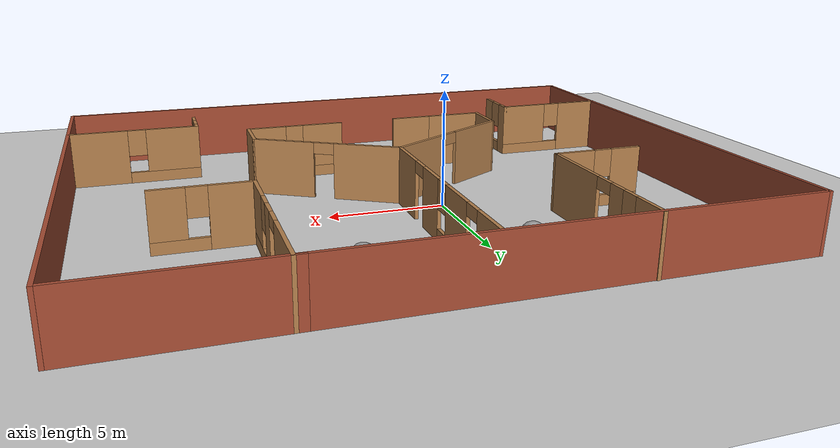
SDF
<sdf version="1.7">
 <world name="default">
  <light name="sun" type="directional">
   <pose>0 0 10 0 -0 0</pose>
   <diffuse>0.8 0.8 0.8 1</diffuse>
   <specular>0.2 0.2 0.2 1</specular>
   <attenuation>
    <range>1000</range>
    <constant>0.9</constant>
    <linear>0.01</linear>
    <quadratic>0.001</quadratic>
   </attenuation>
   <direction>-0.5 0.1 -0.9</direction>
   <spot><inner_angle>0</inner_angle><outer_angle>0</outer_angle><falloff>0</falloff></spot>
  </light>
  <model name="ground_plane">
   <static>1</static>
   <link name="link">
    <collision name="collision">
     <geometry><plane><normal>0 0 1</normal><size>100 100</size></plane></geometry>
     <surface>
      <contact><collide_bitmask>65535</collide_bitmask></contact>
      <friction><ode><mu>100</mu><mu2>50</mu2></ode></friction>
     </surface>
    </collision>
    <visual name="visual">
     <cast_shadows>0</cast_shadows>
     <geometry><plane><normal>0 0 1</normal><size>100 100</size></plane></geometry>
     <material>
      <script><uri>file://media/materials/scripts/gazebo.material</uri><name>Gazebo/Grey</name></script>
     </material>
    </visual>
   </link>
  </model>
  <gravity>0 0 -9.8</gravity>
  <magnetic_field>6e-06 2.3e-05 -4.2e-05</magnetic_field>
  <atmosphere type="adiabatic"/>
  <physics type="ode">
   <max_step_size>0.001</max_step_size>
   <real_time_factor>1</real_time_factor>
   <real_time_update_rate>1000</real_time_update_rate>
  </physics>
  <scene><ambient>0.4 0.4 0.4 1</ambient><background>0.7 0.7 0.7 1</background><shadows>1</shadows></scene>
  <spherical_coordinates>
   <surface_model>EARTH_WGS84</surface_model>
   <latitude_deg>0</latitude_deg>
   <longitude_deg>0</longitude_deg>
   <elevation>0</elevation>
   <heading_deg>0</heading_deg>
  </spherical_coordinates>
  <model name="Untitled">
   <pose>2.03414 -0.999461 0 0 -0 0</pose>
   <link name="Wall_10">
    <collision name="Wall_10_Collision">
     <geometry><box><size>20.75 0.15 2.5</size></box></geometry>
     <pose>0 0 1.25 0 -0 0</pose>
    </collision>
    <visual name="Wall_10_Visual">
     <pose>0 0 1.25 0 -0 0</pose>
     <geometry><box><size>20.75 0.15 2.5</size></box></geometry>
     <material>
      <script><uri>file://media/materials/scripts/gazebo.material</uri><name>Gazebo/Bricks</name></script>
      <ambient>1 1 1 1</ambient>
     </material>
     <meta><layer>0</layer></meta>
    </visual>
    <pose>13.1888 -0.018271 0 0 -0 1.5708</pose>
   </link>
   <link name="Wall_11">
    <collision name="Wall_11_Collision">
     <geometry><box><size>7.5 0.15 2.5</size></box></geometry>
     <pose>0 0 1.25 0 -0 0</pose>
    </collision>
    <visual name="Wall_11_Visual">
     <pose>0 0 1.25 0 -0 0</pose>
     <geometry><box><size>7.5 0.15 2.5</size></box></geometry>
     <material>
      <script><uri>file://media/materials/scripts/gazebo.material</uri><name>Gazebo/Bricks</name></script>
      <ambient>1 1 1 1</ambient>
     </material>
     <meta><layer>0</layer></meta>
    </visual>
    <pose>9.51376 10.2817 0 0 -0 3.14159</pose>
   </link>
   <link name="Wall_25">
    <pose>-6.26858 6.64327 0 0 -0 -1.5708</pose>
    <visual name="Wall_25_Visual_0">
     <pose>-2.94608 0 1.25 0 -0 0</pose>
     <geometry><box><size>1.60784 0.15 2.5</size></box></geometry>
     <material>
      <script><uri>file://media/materials/scripts/gazebo.material</uri><name>Gazebo/Wood</name></script>
      <ambient>1 1 1 1</ambient>
     </material>
     <meta><layer>0</layer></meta>
    </visual>
    <collision name="Wall_25_Collision_0">
     <geometry><box><size>1.60784 0.15 2.5</size></box></geometry>
     <pose>-2.94608 0 1.25 0 -0 0</pose>
    </collision>
    <visual name="Wall_25_Visual_1">
     <pose>2.07321 0 1.25 0 -0 0</pose>
     <geometry><box><size>3.35358 0.15 2.5</size></box></geometry>
     <material>
      <script><uri>file://media/materials/scripts/gazebo.material</uri><name>Gazebo/Wood</name></script>
      <ambient>1 1 1 1</ambient>
     </material>
     <meta><layer>0</layer></meta>
    </visual>
    <collision name="Wall_25_Collision_1">
     <geometry><box><size>3.35358 0.15 2.5</size></box></geometry>
     <pose>2.07321 0 1.25 0 -0 0</pose>
    </collision>
    <visual name="Wall_25_Visual_2">
     <pose>-1.32286 0 0.25 0 -0 0</pose>
     <geometry><box><size>1.63858 0.15 0.5</size></box></geometry>
     <material>
      <script><uri>file://media/materials/scripts/gazebo.material</uri><name>Gazebo/Wood</name></script>
      <ambient>1 1 1 1</ambient>
     </material>
     <meta><layer>0</layer></meta>
    </visual>
    <collision name="Wall_25_Collision_2">
     <geometry><box><size>1.63858 0.15 0.5</size></box></geometry>
     <pose>-1.32286 0 0.25 0 -0 0</pose>
    </collision>
    <visual name="Wall_25_Visual_3">
     <pose>-0.922865 0 1.5 0 -0 0</pose>
     <geometry><box><size>0.838581 0.15 2</size></box></geometry>
     <material>
      <script><uri>file://media/materials/scripts/gazebo.material</uri><name>Gazebo/Wood</name></script>
      <ambient>1 1 1 1</ambient>
     </material>
     <meta><layer>0</layer></meta>
    </visual>
    <collision name="Wall_25_Collision_3">
     <geometry><box><size>0.838581 0.15 2</size></box></geometry>
     <pose>-0.922865 0 1.5 0 -0 0</pose>
    </collision>
    <visual name="Wall_25_Visual_4">
     <pose>-1.74216 0 1.9 0 -0 0</pose>
     <geometry><box><size>0.8 0.15 1.2</size></box></geometry>
     <material>
      <script><uri>file://media/materials/scripts/gazebo.material</uri><name>Gazebo/Wood</name></script>
      <ambient>1 1 1 1</ambient>
     </material>
     <meta><layer>0</layer></meta>
    </visual>
    <collision name="Wall_25_Collision_4">
     <geometry><box><size>0.8 0.15 1.2</size></box></geometry>
     <pose>-1.74216 0 1.9 0 -0 0</pose>
    </collision>
    <visual name="Wall_25_Visual_5">
     <pose>-0.053575 0 2.25 0 -0 0</pose>
     <geometry><box><size>0.9 0.15 0.5</size></box></geometry>
     <material>
      <script><uri>file://media/materials/scripts/gazebo.material</uri><name>Gazebo/Wood</name></script>
      <ambient>1 1 1 1</ambient>
     </material>
     <meta><layer>0</layer></meta>
    </visual>
    <collision name="Wall_25_Collision_5">
     <geometry><box><size>0.9 0.15 0.5</size></box></geometry>
     <pose>-0.053575 0 2.25 0 -0 0</pose>
    </collision>
   </link>
   <link name="Wall_26">
    <pose>-8.19358 2.96827 0 0 -0 3.14159</pose>
    <visual name="Wall_26_Visual_0">
     <pose>-1.08132 0 1.25 0 -0 0</pose>
     <geometry><box><size>1.83737 0.15 2.5</size></box></geometry>
     <material>
      <script><uri>file://media/materials/scripts/gazebo.material</uri><name>Gazebo/Wood</name></script>
      <ambient>1 1 1 1</ambient>
     </material>
     <meta><layer>0</layer></meta>
    </visual>
    <collision name="Wall_26_Collision_0">
     <geometry><box><size>1.83737 0.15 2.5</size></box></geometry>
     <pose>-1.08132 0 1.25 0 -0 0</pose>
    </collision>
    <visual name="Wall_26_Visual_1">
     <pose>0.918685 0 0.25 0 -0 0</pose>
     <geometry><box><size>2.16263 0.15 0.5</size></box></geometry>
     <material>
      <script><uri>file://media/materials/scripts/gazebo.material</uri><name>Gazebo/Wood</name></script>
      <ambient>1 1 1 1</ambient>
     </material>
     <meta><layer>0</layer></meta>
    </visual>
    <collision name="Wall_26_Collision_1">
     <geometry><box><size>2.16263 0.15 0.5</size></box></geometry>
     <pose>0.918685 0 0.25 0 -0 0</pose>
    </collision>
    <visual name="Wall_26_Visual_2">
     <pose>1.31869 0 1.5 0 -0 0</pose>
     <geometry><box><size>1.36263 0.15 2</size></box></geometry>
     <material>
      <script><uri>file://media/materials/scripts/gazebo.material</uri><name>Gazebo/Wood</name></script>
      <ambient>1 1 1 1</ambient>
     </material>
     <meta><layer>0</layer></meta>
    </visual>
    <collision name="Wall_26_Collision_2">
     <geometry><box><size>1.36263 0.15 2</size></box></geometry>
     <pose>1.31869 0 1.5 0 -0 0</pose>
    </collision>
    <visual name="Wall_26_Visual_3">
     <pose>0.237371 0 1.9 0 -0 0</pose>
     <geometry><box><size>0.8 0.15 1.2</size></box></geometry>
     <material>
      <script><uri>file://media/materials/scripts/gazebo.material</uri><name>Gazebo/Wood</name></script>
      <ambient>1 1 1 1</ambient>
     </material>
     <meta><layer>0</layer></meta>
    </visual>
    <collision name="Wall_26_Collision_3">
     <geometry><box><size>0.8 0.15 1.2</size></box></geometry>
     <pose>0.237371 0 1.9 0 -0 0</pose>
    </collision>
   </link>
   <link name="Wall_28">
    <pose>6.18876 6.60673 0 0 -0 -1.5708</pose>
    <visual name="Wall_28_Visual_0">
     <pose>-2.23887 0 1.25 0 -0 0</pose>
     <geometry><box><size>3.02226 0.15 2.5</size></box></geometry>
     <material>
      <script><uri>file://media/materials/scripts/gazebo.material</uri><name>Gazebo/Wood</name></script>
      <ambient>1 1 1 1</ambient>
     </material>
     <meta><layer>0</layer></meta>
    </visual>
    <collision name="Wall_28_Collision_0">
     <geometry><box><size>3.02226 0.15 2.5</size></box></geometry>
     <pose>-2.23887 0 1.25 0 -0 0</pose>
    </collision>
    <visual name="Wall_28_Visual_1">
     <pose>0.615005 0 1.25 0 -0 0</pose>
     <geometry><box><size>0.885486 0.15 2.5</size></box></geometry>
     <material>
      <script><uri>file://media/materials/scripts/gazebo.material</uri><name>Gazebo/Wood</name></script>
      <ambient>1 1 1 1</ambient>
     </material>
     <meta><layer>0</layer></meta>
    </visual>
    <collision name="Wall_28_Collision_1">
     <geometry><box><size>0.885486 0.15 2.5</size></box></geometry>
     <pose>0.615005 0 1.25 0 -0 0</pose>
    </collision>
    <visual name="Wall_28_Visual_2">
     <pose>2.40387 0 0.25 0 -0 0</pose>
     <geometry><box><size>2.69225 0.15 0.5</size></box></geometry>
     <material>
      <script><uri>file://media/materials/scripts/gazebo.material</uri><name>Gazebo/Wood</name></script>
      <ambient>1 1 1 1</ambient>
     </material>
     <meta><layer>0</layer></meta>
    </visual>
    <collision name="Wall_28_Collision_2">
     <geometry><box><size>2.69225 0.15 0.5</size></box></geometry>
     <pose>2.40387 0 0.25 0 -0 0</pose>
    </collision>
    <visual name="Wall_28_Visual_3">
     <pose>2.80387 0 1.5 0 -0 0</pose>
     <geometry><box><size>1.89225 0.15 2</size></box></geometry>
     <material>
      <script><uri>file://media/materials/scripts/gazebo.material</uri><name>Gazebo/Wood</name></script>
      <ambient>1 1 1 1</ambient>
     </material>
     <meta><layer>0</layer></meta>
    </visual>
    <collision name="Wall_28_Collision_3">
     <geometry><box><size>1.89225 0.15 2</size></box></geometry>
     <pose>2.80387 0 1.5 0 -0 0</pose>
    </collision>
    <visual name="Wall_28_Visual_4">
     <pose>1.45775 0 1.9 0 -0 0</pose>
     <geometry><box><size>0.8 0.15 1.2</size></box></geometry>
     <material>
      <script><uri>file://media/materials/scripts/gazebo.material</uri><name>Gazebo/Wood</name></script>
      <ambient>1 1 1 1</ambient>
     </material>
     <meta><layer>0</layer></meta>
    </visual>
    <collision name="Wall_28_Collision_4">
     <geometry><box><size>0.8 0.15 1.2</size></box></geometry>
     <pose>1.45775 0 1.9 0 -0 0</pose>
    </collision>
    <visual name="Wall_28_Visual_5">
     <pose>-0.277738 0 2.25 0 -0 0</pose>
     <geometry><box><size>0.9 0.15 0.5</size></box></geometry>
     <material>
      <script><uri>file://media/materials/scripts/gazebo.material</uri><name>Gazebo/Wood</name></script>
      <ambient>1 1 1 1</ambient>
     </material>
     <meta><layer>0</layer></meta>
    </visual>
    <collision name="Wall_28_Collision_5">
     <geometry><box><size>0.9 0.15 0.5</size></box></geometry>
     <pose>-0.277738 0 2.25 0 -0 0</pose>
    </collision>
   </link>
   <link name="Wall_29">
    <pose>8.11376 2.93173 0 0 -0 0</pose>
    <visual name="Wall_29_Visual_0">
     <pose>-1.09981 0 1.25 0 -0 0</pose>
     <geometry><box><size>1.80038 0.15 2.5</size></box></geometry>
     <material>
      <script><uri>file://media/materials/scripts/gazebo.material</uri><name>Gazebo/Wood</name></script>
      <ambient>1 1 1 1</ambient>
     </material>
     <meta><layer>0</layer></meta>
    </visual>
    <collision name="Wall_29_Collision_0">
     <geometry><box><size>1.80038 0.15 2.5</size></box></geometry>
     <pose>-1.09981 0 1.25 0 -0 0</pose>
    </collision>
    <visual name="Wall_29_Visual_1">
     <pose>0.900191 0 0.25 0 -0 0</pose>
     <geometry><box><size>2.19962 0.15 0.5</size></box></geometry>
     <material>
      <script><uri>file://media/materials/scripts/gazebo.material</uri><name>Gazebo/Wood</name></script>
      <ambient>1 1 1 1</ambient>
     </material>
     <meta><layer>0</layer></meta>
    </visual>
    <collision name="Wall_29_Collision_1">
     <geometry><box><size>2.19962 0.15 0.5</size></box></geometry>
     <pose>0.900191 0 0.25 0 -0 0</pose>
    </collision>
    <visual name="Wall_29_Visual_2">
     <pose>1.30019 0 1.5 0 -0 0</pose>
     <geometry><box><size>1.39962 0.15 2</size></box></geometry>
     <material>
      <script><uri>file://media/materials/scripts/gazebo.material</uri><name>Gazebo/Wood</name></script>
      <ambient>1 1 1 1</ambient>
     </material>
     <meta><layer>0</layer></meta>
    </visual>
    <collision name="Wall_29_Collision_2">
     <geometry><box><size>1.39962 0.15 2</size></box></geometry>
     <pose>1.30019 0 1.5 0 -0 0</pose>
    </collision>
    <visual name="Wall_29_Visual_3">
     <pose>0.200381 0 1.9 0 -0 0</pose>
     <geometry><box><size>0.8 0.15 1.2</size></box></geometry>
     <material>
      <script><uri>file://media/materials/scripts/gazebo.material</uri><name>Gazebo/Wood</name></script>
      <ambient>1 1 1 1</ambient>
     </material>
     <meta><layer>0</layer></meta>
    </visual>
    <collision name="Wall_29_Collision_3">
     <geometry><box><size>0.8 0.15 1.2</size></box></geometry>
     <pose>0.200381 0 1.9 0 -0 0</pose>
    </collision>
   </link>
   <link name="Wall_45">
    <pose>-0.423809 5.13979 0 0 -0 1.5708</pose>
    <visual name="Wall_45_Visual_0">
     <pose>-4.02589 0 1.25 0 -0 0</pose>
     <geometry><box><size>2.19822 0.15 2.5</size></box></geometry>
     <material>
      <script><uri>file://media/materials/scripts/gazebo.material</uri><name>Gazebo/Wood</name></script>
      <ambient>1 1 1 1</ambient>
     </material>
     <meta><layer>0</layer></meta>
    </visual>
    <collision name="Wall_45_Collision_0">
     <geometry><box><size>2.19822 0.15 2.5</size></box></geometry>
     <pose>-4.02589 0 1.25 0 -0 0</pose>
    </collision>
    <visual name="Wall_45_Visual_1">
     <pose>-1.2088 0 1.25 0 -0 0</pose>
     <geometry><box><size>1.63597 0.15 2.5</size></box></geometry>
     <material>
      <script><uri>file://media/materials/scripts/gazebo.material</uri><name>Gazebo/Wood</name></script>
      <ambient>1 1 1 1</ambient>
     </material>
     <meta><layer>0</layer></meta>
    </visual>
    <collision name="Wall_45_Collision_1">
     <geometry><box><size>1.63597 0.15 2.5</size></box></geometry>
     <pose>-1.2088 0 1.25 0 -0 0</pose>
    </collision>
    <visual name="Wall_45_Visual_2">
     <pose>4.19925 0 1.25 0 -0 0</pose>
     <geometry><box><size>1.85151 0.15 2.5</size></box></geometry>
     <material>
      <script><uri>file://media/materials/scripts/gazebo.material</uri><name>Gazebo/Wood</name></script>
      <ambient>1 1 1 1</ambient>
     </material>
     <meta><layer>0</layer></meta>
    </visual>
    <collision name="Wall_45_Collision_2">
     <geometry><box><size>1.85151 0.15 2.5</size></box></geometry>
     <pose>4.19925 0 1.25 0 -0 0</pose>
    </collision>
    <visual name="Wall_45_Visual_3">
     <pose>0.991339 0 0.25 0 -0 0</pose>
     <geometry><box><size>2.7643 0.15 0.5</size></box></geometry>
     <material>
      <script><uri>file://media/materials/scripts/gazebo.material</uri><name>Gazebo/Wood</name></script>
      <ambient>1 1 1 1</ambient>
     </material>
     <meta><layer>0</layer></meta>
    </visual>
    <collision name="Wall_45_Collision_3">
     <geometry><box><size>2.7643 0.15 0.5</size></box></geometry>
     <pose>0.991339 0 0.25 0 -0 0</pose>
    </collision>
    <visual name="Wall_45_Visual_4">
     <pose>1.39134 0 1.5 0 -0 0</pose>
     <geometry><box><size>1.9643 0.15 2</size></box></geometry>
     <material>
      <script><uri>file://media/materials/scripts/gazebo.material</uri><name>Gazebo/Wood</name></script>
      <ambient>1 1 1 1</ambient>
     </material>
     <meta><layer>0</layer></meta>
    </visual>
    <collision name="Wall_45_Collision_4">
     <geometry><box><size>1.9643 0.15 2</size></box></geometry>
     <pose>1.39134 0 1.5 0 -0 0</pose>
    </collision>
    <visual name="Wall_45_Visual_5">
     <pose>0.009188 0 1.9 0 -0 0</pose>
     <geometry><box><size>0.8 0.15 1.2</size></box></geometry>
     <material>
      <script><uri>file://media/materials/scripts/gazebo.material</uri><name>Gazebo/Wood</name></script>
      <ambient>1 1 1 1</ambient>
     </material>
     <meta><layer>0</layer></meta>
    </visual>
    <collision name="Wall_45_Collision_5">
     <geometry><box><size>0.8 0.15 1.2</size></box></geometry>
     <pose>0.009188 0 1.9 0 -0 0</pose>
    </collision>
    <visual name="Wall_45_Visual_6">
     <pose>-2.47678 0 2.25 0 -0 0</pose>
     <geometry><box><size>0.9 0.15 0.5</size></box></geometry>
     <material>
      <script><uri>file://media/materials/scripts/gazebo.material</uri><name>Gazebo/Wood</name></script>
      <ambient>1 1 1 1</ambient>
     </material>
     <meta><layer>0</layer></meta>
    </visual>
    <collision name="Wall_45_Collision_6">
     <geometry><box><size>0.9 0.15 0.5</size></box></geometry>
     <pose>-2.47678 0 2.25 0 -0 0</pose>
    </collision>
    <visual name="Wall_45_Visual_7">
     <pose>2.82349 0 2.25 0 -0 0</pose>
     <geometry><box><size>0.9 0.15 0.5</size></box></geometry>
     <material>
      <script><uri>file://media/materials/scripts/gazebo.material</uri><name>Gazebo/Wood</name></script>
      <ambient>1 1 1 1</ambient>
     </material>
     <meta><layer>0</layer></meta>
    </visual>
    <collision name="Wall_45_Collision_7">
     <geometry><box><size>0.9 0.15 0.5</size></box></geometry>
     <pose>2.82349 0 2.25 0 -0 0</pose>
    </collision>
   </link>
   <link name="Wall_59">
    <pose>-3.28169 -1.56021 0 0 -0 -2.61799</pose>
    <visual name="Wall_59_Visual_0">
     <pose>-1.93227 0 1.25 0 -0 0</pose>
     <geometry><box><size>2.88546 0.15 2.5</size></box></geometry>
     <material>
      <script><uri>file://media/materials/scripts/gazebo.material</uri><name>Gazebo/Wood</name></script>
      <ambient>1 1 1 1</ambient>
     </material>
     <meta><layer>0</layer></meta>
    </visual>
    <collision name="Wall_59_Collision_0">
     <geometry><box><size>2.88546 0.15 2.5</size></box></geometry>
     <pose>-1.93227 0 1.25 0 -0 0</pose>
    </collision>
    <visual name="Wall_59_Visual_1">
     <pose>1.89273 0 1.25 0 -0 0</pose>
     <geometry><box><size>2.96454 0.15 2.5</size></box></geometry>
     <material>
      <script><uri>file://media/materials/scripts/gazebo.material</uri><name>Gazebo/Wood</name></script>
      <ambient>1 1 1 1</ambient>
     </material>
     <meta><layer>0</layer></meta>
    </visual>
    <collision name="Wall_59_Collision_1">
     <geometry><box><size>2.96454 0.15 2.5</size></box></geometry>
     <pose>1.89273 0 1.25 0 -0 0</pose>
    </collision>
    <visual name="Wall_59_Visual_2">
     <pose>-0.039535 0 2.25 0 -0 0</pose>
     <geometry><box><size>0.9 0.15 0.5</size></box></geometry>
     <material>
      <script><uri>file://media/materials/scripts/gazebo.material</uri><name>Gazebo/Wood</name></script>
      <ambient>1 1 1 1</ambient>
     </material>
     <meta><layer>0</layer></meta>
    </visual>
    <collision name="Wall_59_Collision_2">
     <geometry><box><size>0.9 0.15 0.5</size></box></geometry>
     <pose>-0.039535 0 2.25 0 -0 0</pose>
    </collision>
   </link>
   <link name="Wall_60">
    <collision name="Wall_60_Collision">
     <geometry><box><size>2 0.15 2.5</size></box></geometry>
     <pose>0 0 1.25 0 -0 0</pose>
    </collision>
    <visual name="Wall_60_Visual">
     <pose>0 0 1.25 0 -0 0</pose>
     <geometry><box><size>2 0.15 2.5</size></box></geometry>
     <material>
      <script><uri>file://media/materials/scripts/gazebo.material</uri><name>Gazebo/Wood</name></script>
      <ambient>1 1 1 1</ambient>
     </material>
     <meta><layer>0</layer></meta>
    </visual>
    <pose>-6.13958 -4.13521 0 0 -0 -1.5708</pose>
   </link>
   <link name="Wall_62">
    <pose>-10.6388 -5.86402 0 0 -0 0</pose>
    <visual name="Wall_62_Visual_0">
     <pose>-1.55777 0 1.25 0 -0 0</pose>
     <geometry><box><size>2.13446 0.15 2.5</size></box></geometry>
     <material>
      <script><uri>file://media/materials/scripts/gazebo.material</uri><name>Gazebo/Wood</name></script>
      <ambient>1 1 1 1</ambient>
     </material>
     <meta><layer>0</layer></meta>
    </visual>
    <collision name="Wall_62_Collision_0">
     <geometry><box><size>2.13446 0.15 2.5</size></box></geometry>
     <pose>-1.55777 0 1.25 0 -0 0</pose>
    </collision>
    <visual name="Wall_62_Visual_1">
     <pose>1.06723 0 0.25 0 -0 0</pose>
     <geometry><box><size>3.11554 0.15 0.5</size></box></geometry>
     <material>
      <script><uri>file://media/materials/scripts/gazebo.material</uri><name>Gazebo/Wood</name></script>
      <ambient>1 1 1 1</ambient>
     </material>
     <meta><layer>0</layer></meta>
    </visual>
    <collision name="Wall_62_Collision_1">
     <geometry><box><size>3.11554 0.15 0.5</size></box></geometry>
     <pose>1.06723 0 0.25 0 -0 0</pose>
    </collision>
    <visual name="Wall_62_Visual_2">
     <pose>1.46723 0 1.5 0 -0 0</pose>
     <geometry><box><size>2.31554 0.15 2</size></box></geometry>
     <material>
      <script><uri>file://media/materials/scripts/gazebo.material</uri><name>Gazebo/Wood</name></script>
      <ambient>1 1 1 1</ambient>
     </material>
     <meta><layer>0</layer></meta>
    </visual>
    <collision name="Wall_62_Collision_2">
     <geometry><box><size>2.31554 0.15 2</size></box></geometry>
     <pose>1.46723 0 1.5 0 -0 0</pose>
    </collision>
    <visual name="Wall_62_Visual_3">
     <pose>-0.090539 0 1.9 0 -0 0</pose>
     <geometry><box><size>0.8 0.15 1.2</size></box></geometry>
     <material>
      <script><uri>file://media/materials/scripts/gazebo.material</uri><name>Gazebo/Wood</name></script>
      <ambient>1 1 1 1</ambient>
     </material>
     <meta><layer>0</layer></meta>
    </visual>
    <collision name="Wall_62_Collision_3">
     <geometry><box><size>0.8 0.15 1.2</size></box></geometry>
     <pose>-0.090539 0 1.9 0 -0 0</pose>
    </collision>
   </link>
   <link name="Wall_63">
    <pose>-8.08876 -6.91402 0 0 -0 -1.5708</pose>
    <visual name="Wall_63_Visual_0">
     <pose>-0.790158 0 1.25 0 -0 0</pose>
     <geometry><box><size>0.669684 0.15 2.5</size></box></geometry>
     <material>
      <script><uri>file://media/materials/scripts/gazebo.material</uri><name>Gazebo/Wood</name></script>
      <ambient>1 1 1 1</ambient>
     </material>
     <meta><layer>0</layer></meta>
    </visual>
    <collision name="Wall_63_Collision_0">
     <geometry><box><size>0.669684 0.15 2.5</size></box></geometry>
     <pose>-0.790158 0 1.25 0 -0 0</pose>
    </collision>
    <visual name="Wall_63_Visual_1">
     <pose>0.334842 0 0.25 0 -0 0</pose>
     <geometry><box><size>1.58032 0.15 0.5</size></box></geometry>
     <material>
      <script><uri>file://media/materials/scripts/gazebo.material</uri><name>Gazebo/Wood</name></script>
      <ambient>1 1 1 1</ambient>
     </material>
     <meta><layer>0</layer></meta>
    </visual>
    <collision name="Wall_63_Collision_1">
     <geometry><box><size>1.58032 0.15 0.5</size></box></geometry>
     <pose>0.334842 0 0.25 0 -0 0</pose>
    </collision>
    <visual name="Wall_63_Visual_2">
     <pose>0.734842 0 1.5 0 -0 0</pose>
     <geometry><box><size>0.780316 0.15 2</size></box></geometry>
     <material>
      <script><uri>file://media/materials/scripts/gazebo.material</uri><name>Gazebo/Wood</name></script>
      <ambient>1 1 1 1</ambient>
     </material>
     <meta><layer>0</layer></meta>
    </visual>
    <collision name="Wall_63_Collision_2">
     <geometry><box><size>0.780316 0.15 2</size></box></geometry>
     <pose>0.734842 0 1.5 0 -0 0</pose>
    </collision>
    <visual name="Wall_63_Visual_3">
     <pose>-0.055316 0 1.9 0 -0 0</pose>
     <geometry><box><size>0.8 0.15 1.2</size></box></geometry>
     <material>
      <script><uri>file://media/materials/scripts/gazebo.material</uri><name>Gazebo/Wood</name></script>
      <ambient>1 1 1 1</ambient>
     </material>
     <meta><layer>0</layer></meta>
    </visual>
    <collision name="Wall_63_Collision_3">
     <geometry><box><size>0.8 0.15 1.2</size></box></geometry>
     <pose>-0.055316 0 1.9 0 -0 0</pose>
    </collision>
   </link>
   <link name="Wall_65">
    <pose>10.325 -6.42688 0 0 -0 3.14159</pose>
    <visual name="Wall_65_Visual_0">
     <pose>-1.59364 0 1.25 0 -0 0</pose>
     <geometry><box><size>2.56271 0.15 2.5</size></box></geometry>
     <material>
      <script><uri>file://media/materials/scripts/gazebo.material</uri><name>Gazebo/Wood</name></script>
      <ambient>1 1 1 1</ambient>
     </material>
     <meta><layer>0</layer></meta>
    </visual>
    <collision name="Wall_65_Collision_0">
     <geometry><box><size>2.56271 0.15 2.5</size></box></geometry>
     <pose>-1.59364 0 1.25 0 -0 0</pose>
    </collision>
    <visual name="Wall_65_Visual_1">
     <pose>1.28136 0 0.25 0 -0 0</pose>
     <geometry><box><size>3.18729 0.15 0.5</size></box></geometry>
     <material>
      <script><uri>file://media/materials/scripts/gazebo.material</uri><name>Gazebo/Wood</name></script>
      <ambient>1 1 1 1</ambient>
     </material>
     <meta><layer>0</layer></meta>
    </visual>
    <collision name="Wall_65_Collision_1">
     <geometry><box><size>3.18729 0.15 0.5</size></box></geometry>
     <pose>1.28136 0 0.25 0 -0 0</pose>
    </collision>
    <visual name="Wall_65_Visual_2">
     <pose>1.68136 0 1.5 0 -0 0</pose>
     <geometry><box><size>2.38729 0.15 2</size></box></geometry>
     <material>
      <script><uri>file://media/materials/scripts/gazebo.material</uri><name>Gazebo/Wood</name></script>
      <ambient>1 1 1 1</ambient>
     </material>
     <meta><layer>0</layer></meta>
    </visual>
    <collision name="Wall_65_Collision_2">
     <geometry><box><size>2.38729 0.15 2</size></box></geometry>
     <pose>1.68136 0 1.5 0 -0 0</pose>
    </collision>
    <visual name="Wall_65_Visual_3">
     <pose>0.087711 0 1.9 0 -0 0</pose>
     <geometry><box><size>0.8 0.15 1.2</size></box></geometry>
     <material>
      <script><uri>file://media/materials/scripts/gazebo.material</uri><name>Gazebo/Wood</name></script>
      <ambient>1 1 1 1</ambient>
     </material>
     <meta><layer>0</layer></meta>
    </visual>
    <collision name="Wall_65_Collision_3">
     <geometry><box><size>0.8 0.15 1.2</size></box></geometry>
     <pose>0.087711 0 1.9 0 -0 0</pose>
    </collision>
   </link>
   <link name="Wall_66">
    <pose>7.52496 -7.35188 0 0 -0 -1.5708</pose>
    <visual name="Wall_66_Visual_0">
     <pose>-0.758968 0 1.25 0 -0 0</pose>
     <geometry><box><size>0.482064 0.15 2.5</size></box></geometry>
     <material>
      <script><uri>file://media/materials/scripts/gazebo.material</uri><name>Gazebo/Wood</name></script>
      <ambient>1 1 1 1</ambient>
     </material>
     <meta><layer>0</layer></meta>
    </visual>
    <collision name="Wall_66_Collision_0">
     <geometry><box><size>0.482064 0.15 2.5</size></box></geometry>
     <pose>-0.758968 0 1.25 0 -0 0</pose>
    </collision>
    <visual name="Wall_66_Visual_1">
     <pose>0.241032 0 0.25 0 -0 0</pose>
     <geometry><box><size>1.51794 0.15 0.5</size></box></geometry>
     <material>
      <script><uri>file://media/materials/scripts/gazebo.material</uri><name>Gazebo/Wood</name></script>
      <ambient>1 1 1 1</ambient>
     </material>
     <meta><layer>0</layer></meta>
    </visual>
    <collision name="Wall_66_Collision_1">
     <geometry><box><size>1.51794 0.15 0.5</size></box></geometry>
     <pose>0.241032 0 0.25 0 -0 0</pose>
    </collision>
    <visual name="Wall_66_Visual_2">
     <pose>0.641032 0 1.5 0 -0 0</pose>
     <geometry><box><size>0.717936 0.15 2</size></box></geometry>
     <material>
      <script><uri>file://media/materials/scripts/gazebo.material</uri><name>Gazebo/Wood</name></script>
      <ambient>1 1 1 1</ambient>
     </material>
     <meta><layer>0</layer></meta>
    </visual>
    <collision name="Wall_66_Collision_2">
     <geometry><box><size>0.717936 0.15 2</size></box></geometry>
     <pose>0.641032 0 1.5 0 -0 0</pose>
    </collision>
    <visual name="Wall_66_Visual_3">
     <pose>-0.117936 0 1.9 0 -0 0</pose>
     <geometry><box><size>0.8 0.15 1.2</size></box></geometry>
     <material>
      <script><uri>file://media/materials/scripts/gazebo.material</uri><name>Gazebo/Wood</name></script>
      <ambient>1 1 1 1</ambient>
     </material>
     <meta><layer>0</layer></meta>
    </visual>
    <collision name="Wall_66_Collision_3">
     <geometry><box><size>0.8 0.15 1.2</size></box></geometry>
     <pose>-0.117936 0 1.9 0 -0 0</pose>
    </collision>
   </link>
   <link name="Wall_68">
    <pose>2.43407 -1.56021 0 0 -0 -0.523599</pose>
    <visual name="Wall_68_Visual_0">
     <pose>-1.86185 0 1.25 0 -0 0</pose>
     <geometry><box><size>3.02631 0.15 2.5</size></box></geometry>
     <material>
      <script><uri>file://media/materials/scripts/gazebo.material</uri><name>Gazebo/Wood</name></script>
      <ambient>1 1 1 1</ambient>
     </material>
     <meta><layer>0</layer></meta>
    </visual>
    <collision name="Wall_68_Collision_0">
     <geometry><box><size>3.02631 0.15 2.5</size></box></geometry>
     <pose>-1.86185 0 1.25 0 -0 0</pose>
    </collision>
    <visual name="Wall_68_Visual_1">
     <pose>1.96315 0 1.25 0 -0 0</pose>
     <geometry><box><size>2.82369 0.15 2.5</size></box></geometry>
     <material>
      <script><uri>file://media/materials/scripts/gazebo.material</uri><name>Gazebo/Wood</name></script>
      <ambient>1 1 1 1</ambient>
     </material>
     <meta><layer>0</layer></meta>
    </visual>
    <collision name="Wall_68_Collision_1">
     <geometry><box><size>2.82369 0.15 2.5</size></box></geometry>
     <pose>1.96315 0 1.25 0 -0 0</pose>
    </collision>
    <visual name="Wall_68_Visual_2">
     <pose>0.101308 0 2.25 0 -0 0</pose>
     <geometry><box><size>0.9 0.15 0.5</size></box></geometry>
     <material>
      <script><uri>file://media/materials/scripts/gazebo.material</uri><name>Gazebo/Wood</name></script>
      <ambient>1 1 1 1</ambient>
     </material>
     <meta><layer>0</layer></meta>
    </visual>
    <collision name="Wall_68_Collision_2">
     <geometry><box><size>0.9 0.15 0.5</size></box></geometry>
     <pose>0.101308 0 2.25 0 -0 0</pose>
    </collision>
   </link>
   <link name="Wall_69">
    <collision name="Wall_69_Collision">
     <geometry><box><size>2 0.15 2.5</size></box></geometry>
     <pose>0 0 1.25 0 -0 0</pose>
    </collision>
    <visual name="Wall_69_Visual">
     <pose>0 0 1.25 0 -0 0</pose>
     <geometry><box><size>2 0.15 2.5</size></box></geometry>
     <material>
      <script><uri>file://media/materials/scripts/gazebo.material</uri><name>Gazebo/Wood</name></script>
      <ambient>1 1 1 1</ambient>
     </material>
     <meta><layer>0</layer></meta>
    </visual>
    <pose>5.29196 -4.13521 0 0 -0 -1.5708</pose>
   </link>
   <link name="Wall_7">
    <collision name="Wall_7_Collision">
     <geometry><box><size>19.5 0.15 2.5</size></box></geometry>
     <pose>0 0 1.25 0 -0 0</pose>
    </collision>
    <visual name="Wall_7_Visual">
     <pose>0 0 1.25 0 -0 0</pose>
     <geometry><box><size>19.5 0.15 2.5</size></box></geometry>
     <material>
      <script><uri>file://media/materials/scripts/gazebo.material</uri><name>Gazebo/Bricks</name></script>
      <ambient>1 1 1 1</ambient>
     </material>
     <meta><layer>0</layer></meta>
    </visual>
    <pose>-3.48624 10.2817 0 0 -0 3.14159</pose>
   </link>
   <link name="Wall_71">
    <pose>-3.96458 -5.06021 0 0 -0 0</pose>
    <visual name="Wall_71_Visual_0">
     <pose>-1.3302 0 1.25 0 -0 0</pose>
     <geometry><box><size>1.8396 0.15 2.5</size></box></geometry>
     <material>
      <script><uri>file://media/materials/scripts/gazebo.material</uri><name>Gazebo/Wood</name></script>
      <ambient>1 1 1 1</ambient>
     </material>
     <meta><layer>0</layer></meta>
    </visual>
    <collision name="Wall_71_Collision_0">
     <geometry><box><size>1.8396 0.15 2.5</size></box></geometry>
     <pose>-1.3302 0 1.25 0 -0 0</pose>
    </collision>
    <visual name="Wall_71_Visual_1">
     <pose>0.9198 0 0.25 0 -0 0</pose>
     <geometry><box><size>2.6604 0.15 0.5</size></box></geometry>
     <material>
      <script><uri>file://media/materials/scripts/gazebo.material</uri><name>Gazebo/Wood</name></script>
      <ambient>1 1 1 1</ambient>
     </material>
     <meta><layer>0</layer></meta>
    </visual>
    <collision name="Wall_71_Collision_1">
     <geometry><box><size>2.6604 0.15 0.5</size></box></geometry>
     <pose>0.9198 0 0.25 0 -0 0</pose>
    </collision>
    <visual name="Wall_71_Visual_2">
     <pose>1.3198 0 1.5 0 -0 0</pose>
     <geometry><box><size>1.8604 0.15 2</size></box></geometry>
     <material>
      <script><uri>file://media/materials/scripts/gazebo.material</uri><name>Gazebo/Wood</name></script>
      <ambient>1 1 1 1</ambient>
     </material>
     <meta><layer>0</layer></meta>
    </visual>
    <collision name="Wall_71_Collision_2">
     <geometry><box><size>1.8604 0.15 2</size></box></geometry>
     <pose>1.3198 0 1.5 0 -0 0</pose>
    </collision>
    <visual name="Wall_71_Visual_3">
     <pose>-0.010399 0 1.9 0 -0 0</pose>
     <geometry><box><size>0.8 0.15 1.2</size></box></geometry>
     <material>
      <script><uri>file://media/materials/scripts/gazebo.material</uri><name>Gazebo/Wood</name></script>
      <ambient>1 1 1 1</ambient>
     </material>
     <meta><layer>0</layer></meta>
    </visual>
    <collision name="Wall_71_Collision_3">
     <geometry><box><size>0.8 0.15 1.2</size></box></geometry>
     <pose>-0.010399 0 1.9 0 -0 0</pose>
    </collision>
   </link>
   <link name="Wall_73">
    <pose>3.11696 -5.06021 0 0 -0 3.14159</pose>
    <visual name="Wall_73_Visual_0">
     <pose>-1.34381 0 1.25 0 -0 0</pose>
     <geometry><box><size>1.81237 0.15 2.5</size></box></geometry>
     <material>
      <script><uri>file://media/materials/scripts/gazebo.material</uri><name>Gazebo/Wood</name></script>
      <ambient>1 1 1 1</ambient>
     </material>
     <meta><layer>0</layer></meta>
    </visual>
    <collision name="Wall_73_Collision_0">
     <geometry><box><size>1.81237 0.15 2.5</size></box></geometry>
     <pose>-1.34381 0 1.25 0 -0 0</pose>
    </collision>
    <visual name="Wall_73_Visual_1">
     <pose>0.906186 0 0.25 0 -0 0</pose>
     <geometry><box><size>2.68763 0.15 0.5</size></box></geometry>
     <material>
      <script><uri>file://media/materials/scripts/gazebo.material</uri><name>Gazebo/Wood</name></script>
      <ambient>1 1 1 1</ambient>
     </material>
     <meta><layer>0</layer></meta>
    </visual>
    <collision name="Wall_73_Collision_1">
     <geometry><box><size>2.68763 0.15 0.5</size></box></geometry>
     <pose>0.906186 0 0.25 0 -0 0</pose>
    </collision>
    <visual name="Wall_73_Visual_2">
     <pose>1.30619 0 1.5 0 -0 0</pose>
     <geometry><box><size>1.88763 0.15 2</size></box></geometry>
     <material>
      <script><uri>file://media/materials/scripts/gazebo.material</uri><name>Gazebo/Wood</name></script>
      <ambient>1 1 1 1</ambient>
     </material>
     <meta><layer>0</layer></meta>
    </visual>
    <collision name="Wall_73_Collision_2">
     <geometry><box><size>1.88763 0.15 2</size></box></geometry>
     <pose>1.30619 0 1.5 0 -0 0</pose>
    </collision>
    <visual name="Wall_73_Visual_3">
     <pose>-0.037628 0 1.9 0 -0 0</pose>
     <geometry><box><size>0.8 0.15 1.2</size></box></geometry>
     <material>
      <script><uri>file://media/materials/scripts/gazebo.material</uri><name>Gazebo/Wood</name></script>
      <ambient>1 1 1 1</ambient>
     </material>
     <meta><layer>0</layer></meta>
    </visual>
    <collision name="Wall_73_Collision_3">
     <geometry><box><size>0.8 0.15 1.2</size></box></geometry>
     <pose>-0.037628 0 1.9 0 -0 0</pose>
    </collision>
   </link>
   <link name="Wall_8">
    <collision name="Wall_8_Collision">
     <geometry><box><size>20.75 0.15 2.5</size></box></geometry>
     <pose>0 0 1.25 0 -0 0</pose>
    </collision>
    <visual name="Wall_8_Visual">
     <pose>0 0 1.25 0 -0 0</pose>
     <geometry><box><size>20.75 0.15 2.5</size></box></geometry>
     <material>
      <script><uri>file://media/materials/scripts/gazebo.material</uri><name>Gazebo/Bricks</name></script>
      <ambient>1 1 1 1</ambient>
     </material>
     <meta><layer>0</layer></meta>
    </visual>
    <pose>-13.1612 -0.018271 0 0 -0 -1.5708</pose>
   </link>
   <link name="Wall_9">
    <collision name="Wall_9_Collision">
     <geometry><box><size>26.5 0.15 2.5</size></box></geometry>
     <pose>0 0 1.25 0 -0 0</pose>
    </collision>
    <visual name="Wall_9_Visual">
     <pose>0 0 1.25 0 -0 0</pose>
     <geometry><box><size>26.5 0.15 2.5</size></box></geometry>
     <material>
      <script><uri>file://media/materials/scripts/gazebo.material</uri><name>Gazebo/Bricks</name></script>
      <ambient>1 1 1 1</ambient>
     </material>
     <meta><layer>0</layer></meta>
    </visual>
    <pose>0.013757 -10.3183 0 0 -0 0</pose>
   </link>
   <static>1</static>
  </model>
  <model name="unit_sphere">
   <pose>1.67834 -2.66019 0.5 0 -0 0</pose>
   <link name="link">
    <inertial>
     <mass>1</mass>
     <inertia><ixx>0.1</ixx><ixy>0</ixy><ixz>0</ixz><iyy>0.1</iyy><iyz>0</iyz><izz>0.1</izz></inertia>
    </inertial>
    <collision name="collision"><geometry><sphere><radius>0.5</radius></sphere></geometry></collision>
    <visual name="visual">
     <geometry><sphere><radius>0.5</radius></sphere></geometry>
     <material>
      <script><name>Gazebo/Grey</name><uri>file://media/materials/scripts/gazebo.material</uri></script>
     </material>
    </visual>
   </link>
  </model>
  <model name="unit_cylinder">
   <pose>-7.67881 6.60258 0.499998 3e-06 -3e-06 0</pose>
   <link name="link">
    <inertial>
     <mass>1</mass>
     <inertia><ixx>0.145833</ixx><ixy>0</ixy><ixz>0</ixz><iyy>0.145833</iyy><iyz>0</iyz><izz>0.125</izz></inertia>
    </inertial>
    <collision name="collision">
     <geometry><cylinder><radius>0.5</radius><length>1</length></cylinder></geometry>
    </collision>
    <visual name="visual">
     <geometry><cylinder><radius>0.5</radius><length>1</length></cylinder></geometry>
     <material>
      <script><name>Gazebo/Grey</name><uri>file://media/materials/scripts/gazebo.material</uri></script>
     </material>
    </visual>
   </link>
  </model>
  <model name="unit_cylinder_0">
   <pose>12.0559 6.37381 0.499992 -3e-06 3e-06 0</pose>
   <link name="link">
    <inertial>
     <mass>1</mass>
     <inertia><ixx>0.145833</ixx><ixy>0</ixy><ixz>0</ixz><iyy>0.145833</iyy><iyz>0</iyz><izz>0.125</izz></inertia>
    </inertial>
    <collision name="collision">
     <geometry><cylinder><radius>0.5</radius><length>1</length></cylinder></geometry>
    </collision>
    <visual name="visual">
     <geometry><cylinder><radius>0.5</radius><length>1</length></cylinder></geometry>
     <material>
      <script><name>Gazebo/Grey</name><uri>file://media/materials/scripts/gazebo.material</uri></script>
     </material>
    </visual>
   </link>
  </model>
  <model name="unit_sphere_0">
   <pose>-1.55515 5.32866 0.5 0 -0 0</pose>
   <link name="link">
    <inertial>
     <mass>1</mass>
     <inertia><ixx>0.1</ixx><ixy>0</ixy><ixz>0</ixz><iyy>0.1</iyy><iyz>0</iyz><izz>0.1</izz></inertia>
    </inertial>
    <collision name="collision"><geometry><sphere><radius>0.5</radius></sphere></geometry></collision>
    <visual name="visual">
     <geometry><sphere><radius>0.5</radius></sphere></geometry>
     <material>
      <script><name>Gazebo/Grey</name><uri>file://media/materials/scripts/gazebo.material</uri></script>
     </material>
    </visual>
   </link>
  </model>
  <model name="unit_sphere_1">
   <pose>5.06792 5.46107 0.5 0 -0 0</pose>
   <link name="link">
    <inertial>
     <mass>1</mass>
     <inertia><ixx>0.1</ixx><ixy>0</ixy><ixz>0</ixz><iyy>0.1</iyy><iyz>0</iyz><izz>0.1</izz></inertia>
    </inertial>
    <collision name="collision"><geometry><sphere><radius>0.5</radius></sphere></geometry></collision>
    <visual name="visual">
     <geometry><sphere><radius>0.5</radius></sphere></geometry>
     <material>
      <script><name>Gazebo/Grey</name><uri>file://media/materials/scripts/gazebo.material</uri></script>
     </material>
    </visual>
   </link>
  </model>
 </world>
</sdf>
